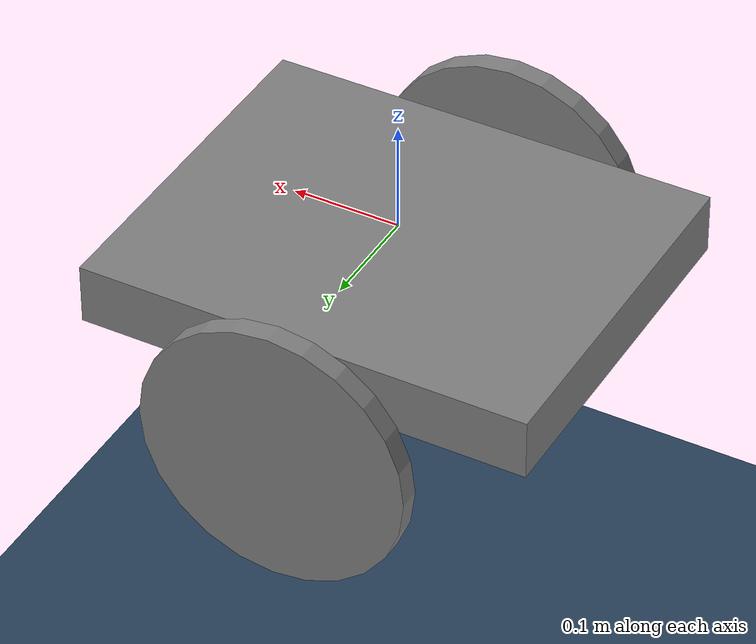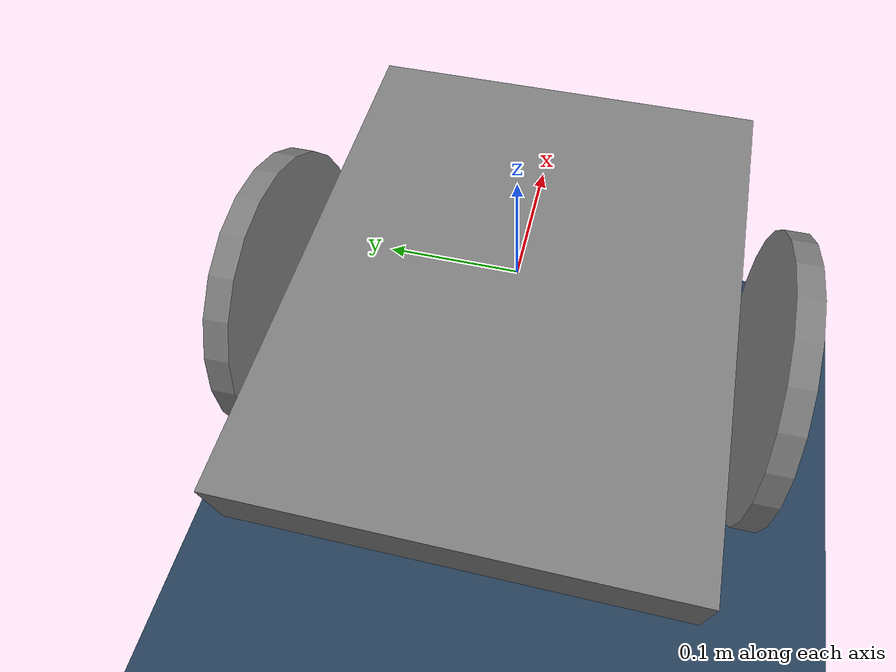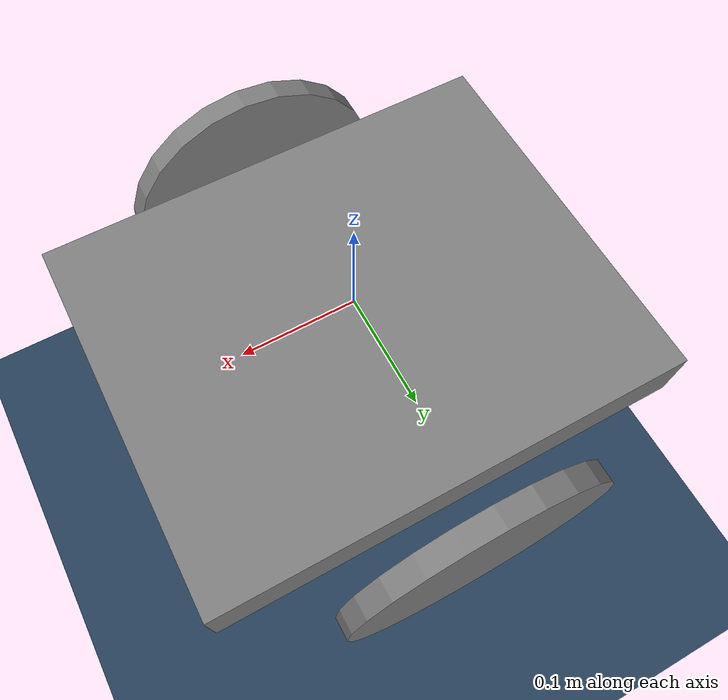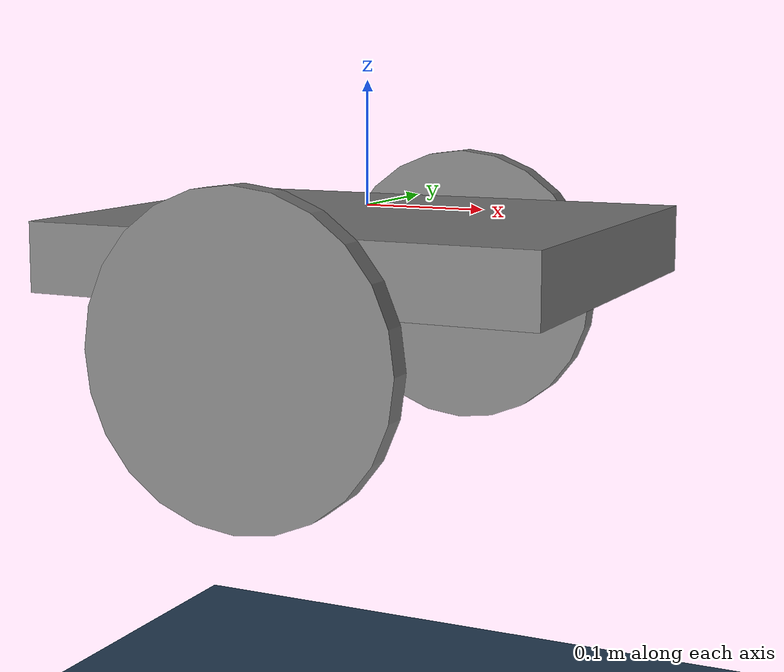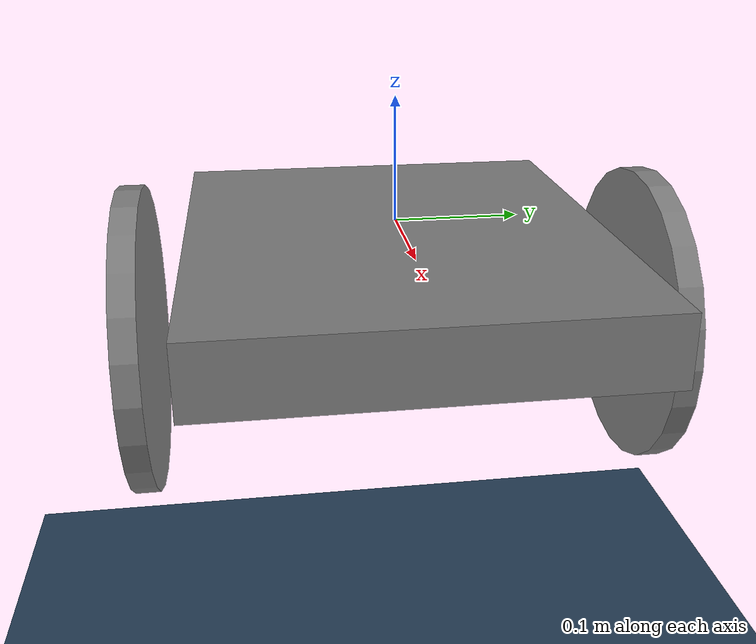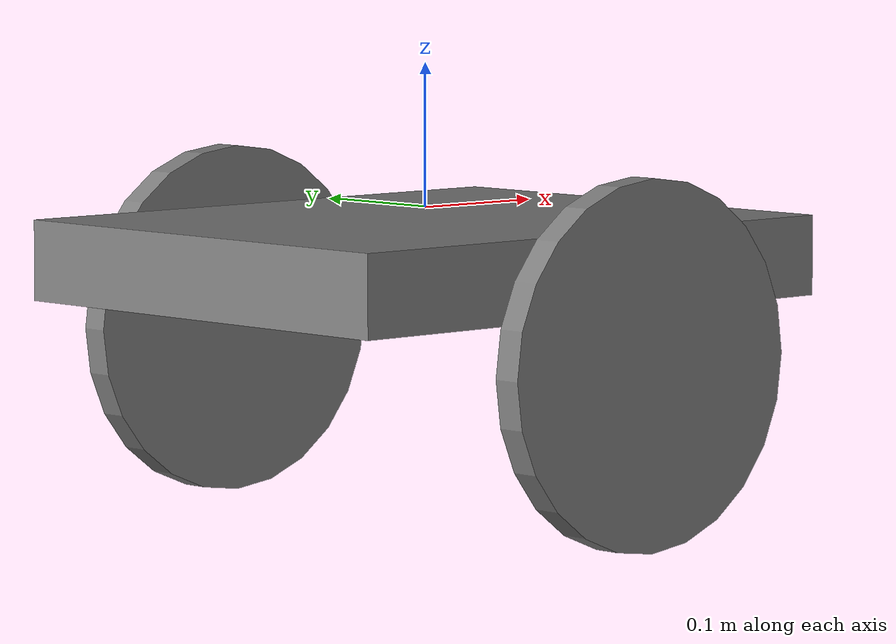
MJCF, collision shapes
<mujoco model="balance">
  <compiler angle="radian" meshdir="/home/yuchen/usetest/RL/humanoid-gym/resources/robots/balance/meshes/"/>

  <asset>
    <mesh name="base_link" file="base_link.stl"/>
    <mesh name="wheel" file="wheel.stl" scale="0.001 0.001 0.001"/>
    <mesh name="imu" file="imu.stl"/>
  </asset>

  <worldbody>
    <body name="base_link">
      <inertial pos="0.0108615 0.0157481 -0.0544901" quat="0.490171 0.55453 -0.488818 0.461829" mass="8.005" diaginertia="0.231148 0.164941 0.106495"/>
      <joint name="floating_base_joint" type="free"/>
      <geom pos="0 0 0" quat="1 0 0 0" type="mesh" contype="0" conaffinity="0" group="1" density="0" mesh="base_link"/>
      <geom size="0.21 0.17 0.028" pos="0 0 -0.035" type="box"/>
      <geom pos="0.088 -0.0545 -0.1105" quat="0.707106 0.000707107 -0.000707107 -0.707106" type="mesh" contype="0" conaffinity="0" group="1" density="0" mesh="imu"/>
      <body name="left_wheel" pos="0 0.2095 -0.092449">
        <inertial pos="0 0 0" quat="0.50784 0.491941 0.501478 0.49861" mass="0.72" diaginertia="0.0168326 0.00946747 0.00911494"/>
        <joint name="left_wheel_joint" pos="0 0 0" axis="0 1 0" range="-1e+16 1e+16" actuatorfrcrange="-9.37 9.37"/>
        <geom quat="1 0 0 0" type="mesh" contype="0" conaffinity="0" group="1" density="0" mesh="wheel"/>
        <geom size="0.125 0.01" quat="0.707107 0.707107 0 0" type="cylinder"/>
      </body>
      <body name="right_wheel" pos="0 -0.2095 -0.092449">
        <inertial pos="0 0 0" quat="0.50784 0.491941 0.501478 0.49861" mass="0.72" diaginertia="0.0168326 0.00946747 0.00911494"/>
        <joint name="right_wheel_joint" pos="0 0 0" axis="0 1 0" range="-1e+16 1e+16" actuatorfrcrange="-9.37 9.37"/>
        <geom quat="1 0 0 0" type="mesh" contype="0" conaffinity="0" group="1" density="0" mesh="wheel"/>
        <geom size="0.125 0.01" quat="0.707107 0.707107 0 0" type="cylinder"/>
      </body>
    </body>
  </worldbody>

    <asset>
        <texture type="skybox" builtin="gradient" rgb1=".3 .5 .7" rgb2="0 0 0" width="512" height="512"/>
        <texture name="grid" type="2d" builtin="checker" width="512" height="512" rgb1=".1 .2 .3" rgb2=".2 .3 .4"/>
        <material name="grid" texture="grid" texrepeat="1 1" texuniform="true" reflectance=".2"/>
    </asset>

    <visual>
        <map fogstart="1.5" fogend="5" force="0.1" znear="0.1"/>
        <quality shadowsize="4096" offsamples="4"/>
        <headlight ambient="0.4 0.4 0.4"/>
    </visual>

    <worldbody>
        <geom name="floor" pos="0 0 -0.505" size="0 0 0.05" type="plane" material="grid" condim="3"/>

        <light castshadow="false" directional='true' diffuse='.3 .3 .3' specular='0.3 0.3 0.3' pos='-1 -1 1'
               dir='1 1 -1'/>
        <light directional='true' diffuse='.3 .3 .3' specular='0.3 0.3 0.3' pos='1 -1 1' dir='-1 1 -1'/>
        <light castshadow="false" directional='true' diffuse='.3 .3 .3' specular='0.3 0.3 0.3' pos='0 1 1'
               dir='0 -1 -1'/>
    </worldbody>

    <actuator>
        <motor name="left_wheel_joint" joint="left_wheel_joint" gear="1" ctrllimited="true" ctrlrange="-9.37 9.37"/>
        <motor name="right_wheel_joint" joint="right_wheel_joint" gear="1" ctrllimited="true" ctrlrange="-9.37 9.37"/>
    </actuator>

</mujoco>
